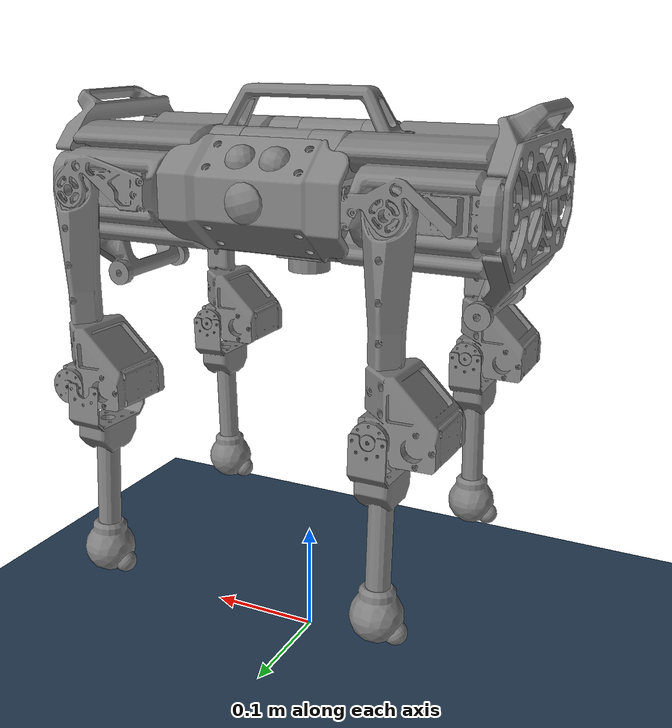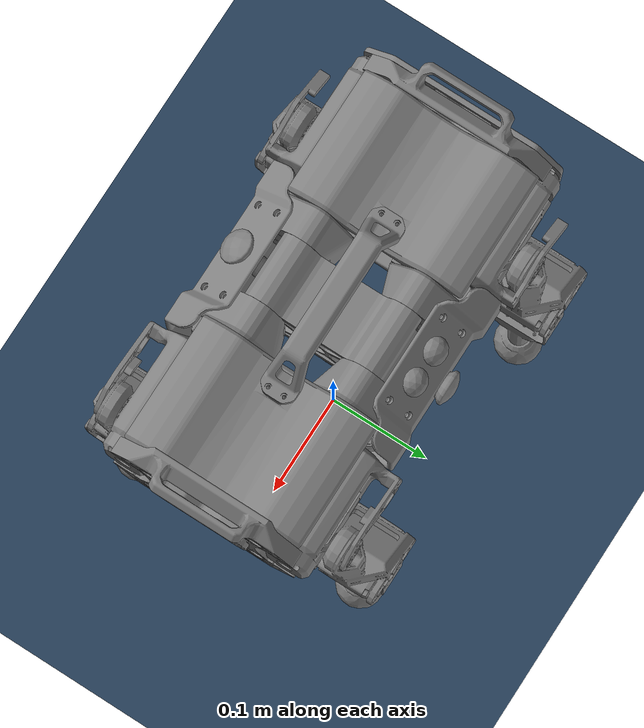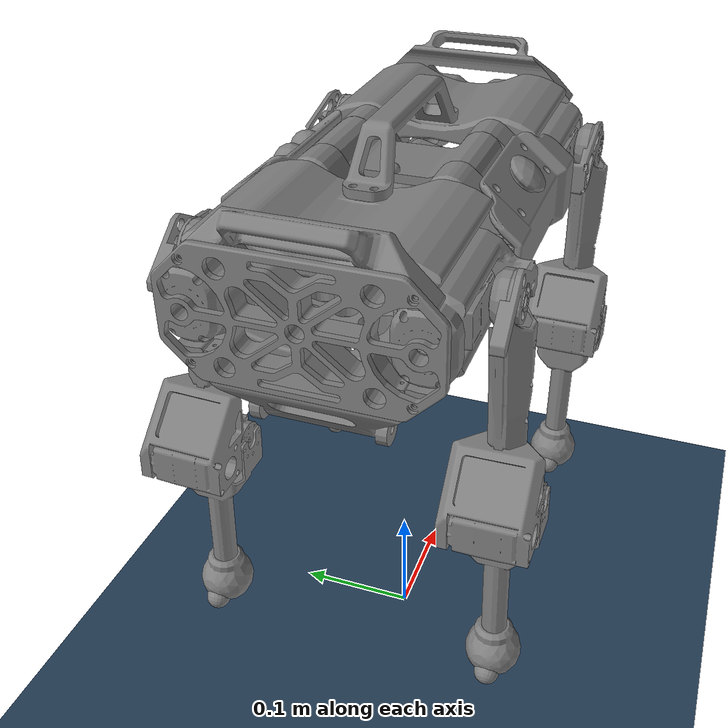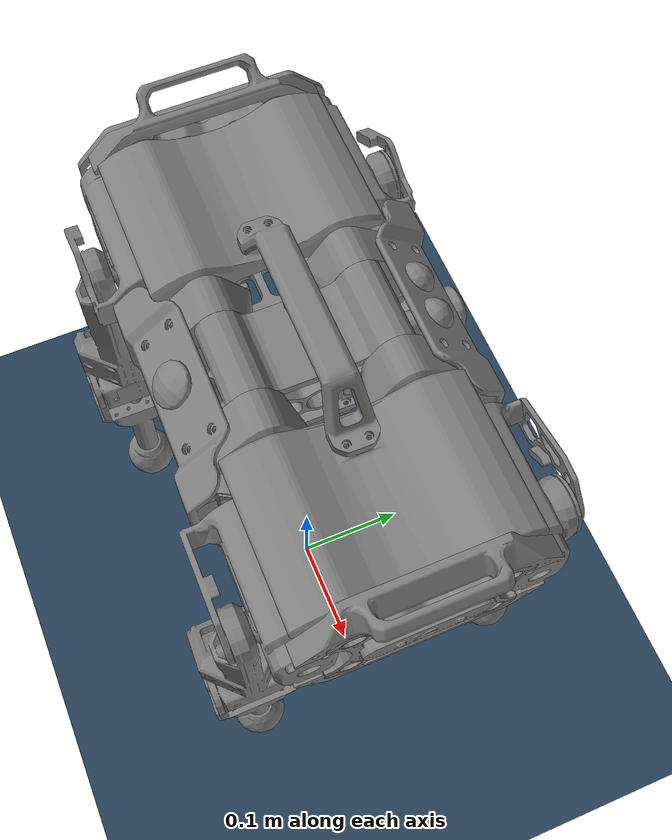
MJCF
<mujoco model="robot scene">
  <include file="my_quadruped.xml"/>

  <!-- Smaller steps and the implicit solver keep stiff contact constraints stable. -->
  <option timestep="0.001" integrator="implicitfast" iterations="100" ls_iterations="50"
    tolerance="1e-8" solver="Newton"/>

  <statistic center="0 0 0.1" extent="0.8"/>

  <visual>
    <headlight diffuse="0.6 0.6 0.6" ambient="0.3 0.3 0.3" specular="0 0 0"/>
    <rgba haze="0.15 0.25 0.35 1"/>
  </visual>

  <asset>
    <texture type="skybox" builtin="gradient" rgb1="0.3 0.5 0.7" rgb2="0 0 0" width="512" height="3072"/>
    <texture type="2d" name="groundplane" builtin="checker" mark="edge" rgb1="0.2 0.3 0.4" rgb2="0.1 0.2 0.3"
      markrgb="0.8 0.8 0.8" width="300" height="300"/>
    <material name="groundplane" texture="groundplane" texuniform="true" texrepeat="5 5" reflectance="0.2"/>
  </asset>

  <keyframe>
    <key name="home"
         qpos="0 0 0.28 1 0 0 0  0.0 0.9 -1.65  0.0 0.9 -1.65  0.0 0.9 -1.6  0.0 0.9 -1.6"
         ctrl="0.0 0.9 -1.65  0.0 0.9 -1.65  0.0 0.9 -1.6  0.0 0.9 -1.6"/>
  </keyframe>

  <worldbody>
    <light pos="0 0 1.5" dir="0 0 -1" directional="true"/>
    <geom name="floor" size="0 0 0.05" type="plane" material="groundplane"
      friction="0.5 0.1 0.02" condim="3" solref="0.002 1" solimp="0.9 0.95 0.001"/>

  </worldbody>
</mujoco>

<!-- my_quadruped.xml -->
<mujoco model="generated_robot">
  <compiler angle="radian" meshdir="meshes/"/>

  <asset>
    <mesh name="part_040_p._-" file="part_040_p._-.stl" scale="0.001 0.001 0.001"/>
    <mesh name="part_045_p." file="part_045_p..stl" scale="0.001 0.001 0.001"/>
    <mesh name="part_042_p._-" file="part_042_p._-.stl" scale="0.001 0.001 0.001"/>
    <mesh name="part_041_p." file="part_041_p..stl" scale="0.001 0.001 0.001"/>
    <mesh name="part_019_p." file="part_019_p..stl" scale="0.001 0.001 0.001"/>
    <mesh name="part_023_p." file="part_023_p..stl" scale="0.001 0.001 0.001"/>
    <mesh name="part_031_p." file="part_031_p..stl" scale="0.001 0.001 0.001"/>
    <mesh name="part_039_p." file="part_039_p..stl" scale="0.001 0.001 0.001"/>
    <mesh name="part_022_p." file="part_022_p..stl" scale="0.001 0.001 0.001"/>
    <mesh name="part_033_p." file="part_033_p..stl" scale="0.001 0.001 0.001"/>
    <mesh name="part_027_p." file="part_027_p..stl" scale="0.001 0.001 0.001"/>
    <mesh name="part_024_p._60-16" file="part_024_p._60-16.stl" scale="0.001 0.001 0.001"/>
    <mesh name="part_002_p." file="part_002_p..stl" scale="0.001 0.001 0.001"/>
    <mesh name="part_028_p." file="part_028_p..stl" scale="0.001 0.001 0.001"/>
    <mesh name="part_025_p._60-16" file="part_025_p._60-16.stl" scale="0.001 0.001 0.001"/>
    <mesh name="part_036_p._ORBBEC_DaBaiDCW" file="part_036_p._ORBBEC_DaBaiDCW.stl" scale="0.001 0.001 0.001"/>
    <mesh name="part_029_p." file="part_029_p..stl" scale="0.001 0.001 0.001"/>
    <mesh name="part_047_part" file="part_047_part.stl" scale="0.001 0.001 0.001"/>
    <mesh name="part_035_p." file="part_035_p..stl" scale="0.001 0.001 0.001"/>
    <mesh name="part_034_p." file="part_034_p..stl" scale="0.001 0.001 0.001"/>
    <mesh name="part_020_p." file="part_020_p..stl" scale="0.001 0.001 0.001"/>
    <mesh name="part_037_p._CNC" file="part_037_p._CNC.stl" scale="0.001 0.001 0.001"/>
    <mesh name="part_021_p." file="part_021_p..stl" scale="0.001 0.001 0.001"/>
    <mesh name="part_032_p." file="part_032_p..stl" scale="0.001 0.001 0.001"/>
    <mesh name="part_030_p." file="part_030_p..stl" scale="0.001 0.001 0.001"/>
    <mesh name="part_043_p." file="part_043_p..stl" scale="0.001 0.001 0.001"/>
    <mesh name="part_044_p._-" file="part_044_p._-.stl" scale="0.001 0.001 0.001"/>
    <mesh name="part_017_p._60-16" file="part_017_p._60-16.stl" scale="0.001 0.001 0.001"/>
    <mesh name="part_046_-" file="part_046_-.stl" scale="0.001 0.001 0.001"/>
    <mesh name="part_018_p._60-16" file="part_018_p._60-16.stl" scale="0.001 0.001 0.001"/>
    <mesh name="part_001_p." file="part_001_p..stl" scale="0.001 0.001 0.001"/>
    <mesh name="part_003_p." file="part_003_p..stl" scale="0.001 0.001 0.001"/>
    <mesh name="part_004_p." file="part_004_p..stl" scale="0.001 0.001 0.001"/>
    <mesh name="part_026_p._-" file="part_026_p._-.stl" scale="0.001 0.001 0.001"/>
    <mesh name="part_005_p." file="part_005_p..stl" scale="0.001 0.001 0.001"/>
    <mesh name="part_009_p." file="part_009_p..stl" scale="0.001 0.001 0.001"/>
    <mesh name="part_013_part" file="part_013_part.stl" scale="0.001 0.001 0.001"/>
    <mesh name="part_006_p." file="part_006_p..stl" scale="0.001 0.001 0.001"/>
    <mesh name="part_010_p." file="part_010_p..stl" scale="0.001 0.001 0.001"/>
    <mesh name="part_015_part" file="part_015_part.stl" scale="0.001 0.001 0.001"/>
    <mesh name="part_007_p." file="part_007_p..stl" scale="0.001 0.001 0.001"/>
    <mesh name="part_011_p." file="part_011_p..stl" scale="0.001 0.001 0.001"/>
    <mesh name="part_014_part" file="part_014_part.stl" scale="0.001 0.001 0.001"/>
    <mesh name="part_008_p." file="part_008_p..stl" scale="0.001 0.001 0.001"/>
    <mesh name="part_012_p." file="part_012_p..stl" scale="0.001 0.001 0.001"/>
    <mesh name="part_016_part" file="part_016_part.stl" scale="0.001 0.001 0.001"/>
  </asset>

  <default>
    <geom contype="1" conaffinity="1"/>
    <joint damping="0.05" frictionloss="0.0001" armature="0.0025"/>
    <default class="visual">
      <geom contype="0" conaffinity="0" group="1" density="0"/>
    </default>
    <default class="collision">
      <geom contype="1" conaffinity="0" group="3" density="0"/>
    </default>
    <default class="servo">
      <geom contype="1" conaffinity="0" condim="1" />
      <joint damping="0.04" frictionloss="0.001" armature="0.0025" />
      <position kp="15" kv="0.5"  forcerange="-3.8 3.8" />
    </default>
  </default>

  <sensor>
      <framequat    name='orientation' objtype='site' noise='0.001' objname='imu'/>
      <gyro         name='imu_ang_vel'    site='imu' noise='0.005'/>
      <velocimeter   name='imu_lin_vel'    site='imu' noise='0.001'/>
      <accelerometer name='imu_accel'     site='imu' noise='0.005'/>
      <subtreeangmom name='root_angmom'    body='trunk'/>
  </sensor>

    <worldbody>
      <body name="trunk" pos="0 0 0.415" quat="1 0 0 0">
        <joint name="float_base" type="free"/>
        <inertial pos="0 0 0" quat="1 0 0 0" mass="3.4" diaginertia="0.01407104 0.04335934 0.04902045"/>
        <site name="imu" pos="-0.02557 0 0.04232" />

        <geom name="trunk_visual_01" pos="-0.0465413 0.0773064 -0.0244771" quat="1 0 0 0" type="mesh" contype="0" conaffinity="0" group="1" density="0" mesh="part_040_p._-"/>
        <geom name="trunk_visual_02" pos="-0.0465413 0.0773064 -0.0244771" quat="1 0 0 0" type="mesh" contype="0" conaffinity="0" group="1" density="0" mesh="part_045_p."/>
        <geom name="trunk_visual_03" pos="-0.0465413 0.0773064 -0.0244771" quat="1 0 0 0" type="mesh" contype="0" conaffinity="0" group="1" density="0" mesh="part_042_p._-"/>
        <geom name="trunk_visual_04" pos="-0.0465413 0.0773064 -0.0244771" quat="1 0 0 0" type="mesh" contype="0" conaffinity="0" group="1" density="0" mesh="part_041_p."/>
        <geom name="trunk_visual_05" pos="-0.0465413 0.0773064 -0.0244771" quat="1 0 0 0" type="mesh" contype="0" conaffinity="0" group="1" density="0" mesh="part_019_p."/>
        <geom name="trunk_visual_06" pos="-0.0465413 0.0773064 -0.0244771" type="mesh" contype="0" conaffinity="0" group="1" density="0" mesh="part_023_p."/>
        <geom name="trunk_visual_07" pos="-0.0465413 0.0773064 -0.0244771" quat="1 0 0 0" type="mesh" contype="0" conaffinity="0" group="1" density="0" mesh="part_031_p."/>
        <geom name="trunk_visual_08" pos="-0.0465413 0.0773064 -0.0244771" quat="1 0 0 0" type="mesh" contype="0" conaffinity="0" group="1" density="0" mesh="part_039_p."/>
        <geom name="trunk_visual_09" pos="-0.0465413 0.0773064 -0.0244771" quat="1 0 0 0" type="mesh" contype="0" conaffinity="0" group="1" density="0" mesh="part_022_p."/>
        <geom name="trunk_visual_10" pos="-0.0465413 0.0773064 -0.0244771" quat="1 0 0 0" type="mesh" contype="0" conaffinity="0" group="1" density="0" mesh="part_033_p."/>
        <geom name="trunk_visual_11" pos="-0.0465413 0.0773064 -0.0244771" quat="1 0 0 0" type="mesh" contype="0" conaffinity="0" group="1" density="0" mesh="part_027_p."/>
        <geom name="trunk_visual_12" pos="-0.0465413 0.0773064 -0.0244771" quat="1 0 0 0" type="mesh" contype="0" conaffinity="0" group="1" density="0" mesh="part_024_p._60-16"/>
        <geom name="trunk_visual_13" pos="-0.0465413 0.0773064 -0.0244771" quat="1 0 0 0" type="mesh" contype="0" conaffinity="0" group="1" density="0" mesh="part_002_p."/>
        <geom name="trunk_visual_14" pos="-0.0465413 0.0773064 -0.0244771" quat="1 0 0 0" type="mesh" contype="0" conaffinity="0" group="1" density="0" mesh="part_028_p."/>
        <geom name="trunk_visual_15" pos="-0.0465413 0.0773064 -0.0244771" quat="1 0 0 0" type="mesh" contype="0" conaffinity="0" group="1" density="0" mesh="part_025_p._60-16"/>
        <geom name="trunk_visual_16" pos="-0.0465413 0.0773064 -0.0244771" quat="1 0 0 0" type="mesh" contype="0" conaffinity="0" group="1" density="0" mesh="part_036_p._ORBBEC_DaBaiDCW"/>
        <geom name="trunk_visual_17" pos="-0.0465413 0.0773064 -0.0244771" quat="1 0 0 0" type="mesh" contype="0" conaffinity="0" group="1" density="0" mesh="part_029_p."/>
        <geom name="trunk_visual_18" pos="-0.0465413 0.0773064 -0.0244771" quat="1 0 0 0" type="mesh" contype="0" conaffinity="0" group="1" density="0" mesh="part_047_part"/>
        <geom name="trunk_visual_19" pos="-0.0465413 0.0773064 -0.0244771" quat="1 0 0 0" type="mesh" contype="0" conaffinity="0" group="1" density="0" mesh="part_035_p."/>
        <geom name="trunk_visual_20" pos="-0.0465413 0.0773064 -0.0244771" quat="1 0 0 0" type="mesh" contype="0" conaffinity="0" group="1" density="0" mesh="part_034_p."/>
        <geom name="trunk_visual_21" pos="-0.0465413 0.0773064 -0.0244771" quat="1 0 0 0" type="mesh" contype="0" conaffinity="0" group="1" density="0" mesh="part_020_p."/>
        <geom name="trunk_visual_22" pos="-0.0465413 0.0773064 -0.0244771" quat="1 0 0 0" type="mesh" contype="0" conaffinity="0" group="1" density="0" mesh="part_037_p._CNC"/>
        <geom name="trunk_visual_23" pos="-0.0465413 0.0773064 -0.0244771" quat="1 0 0 0" type="mesh" contype="0" conaffinity="0" group="1" density="0" mesh="part_021_p."/>
        <geom name="trunk_visual_24" pos="-0.0465413 0.0773064 -0.0244771" quat="1 0 0 0" type="mesh" contype="0" conaffinity="0" group="1" density="0" mesh="part_032_p."/>
        <geom name="trunk_visual_25" pos="-0.0465413 0.0773064 -0.0244771" quat="1 0 0 0" type="mesh" contype="0" conaffinity="0" group="1" density="0" mesh="part_030_p."/>
        <geom name="trunk_visual_26" pos="-0.0465413 0.0773064 -0.0244771" quat="1 0 0 0" type="mesh" contype="0" conaffinity="0" group="1" density="0" mesh="part_043_p."/>
        <geom name="trunk_visual_27" pos="-0.0465413 0.0773064 -0.0244771" quat="1 0 0 0" type="mesh" contype="0" conaffinity="0" group="1" density="0" mesh="part_044_p._-"/>
        <geom name="trunk_visual_28" pos="-0.0465413 0.0773064 -0.0244771" quat="1 0 0 0" type="mesh" contype="0" conaffinity="0" group="1" density="0" mesh="part_017_p._60-16"/>
        <geom name="trunk_visual_29" pos="-0.0465413 0.0773064 -0.0244771" quat="1 0 0 0" type="mesh" contype="0" conaffinity="0" group="1" density="0" mesh="part_046_-"/>
        <geom name="trunk_visual_30" pos="-0.0465413 0.0773064 -0.0244771" quat="1 0 0 0" type="mesh" contype="0" conaffinity="0" group="1" density="0" mesh="part_018_p._60-16"/>
        <geom name="trunk_visual_31" pos="-0.0465413 0.0773064 -0.0244771" quat="1 0 0 0" type="mesh" contype="0" conaffinity="0" group="1" density="0" mesh="part_001_p."/>
        <geom name="trunk_visual_32" pos="-0.0465413 0.0773064 -0.0244771" quat="1 0 0 0" type="mesh" contype="0" conaffinity="0" group="1" density="0" mesh="part_003_p."/>
        <geom name="trunk_visual_33" pos="-0.0465413 0.0773064 -0.0244771" quat="1 0 0 0" type="mesh" contype="0" conaffinity="0" group="1" density="0" mesh="part_004_p."/>
        <geom name="trunk_visual_34" pos="-0.0465413 0.0773064 -0.0244771" quat="1 0 0 0" type="mesh" contype="0" conaffinity="0" group="1" density="0" mesh="part_026_p._-"/>

        <!-- 物理碰撞 Box：用 Box 代替一堆 STL 网格进行碰撞计算，group="3" 且不显示外观 -->
        <geom name="trunk_collision" type="box" size="0.195 0.1 0.05" pos="0 0 0.008" contype="0" conaffinity="0" group="3" density="0"/>

        <body name="FL_hip" pos="0.1972 0.0894256 0.00635923" quat="0.5 -0.5 -0.5 0.5">
          <inertial pos="-0.00909489 -0.000258221 0.0630494" quat="0.999696 0.000164542 0.00140553 0.0246125" mass="0.256472" diaginertia="0.000342688 0.000319455 0.000127745"/>
          <joint name="FL_hip_joint" pos="0 0 0" axis="0 0 1" range="-0.802851 0.802851" damping="0.05" frictionloss="0.0001" armature="0.0025"/>
          <geom name="FL_hip_visual" pos="-0.0121192 0.0308363 0.243741" quat="0.5 0.5 0.5 -0.5" type="mesh" contype="0" conaffinity="0" group="1" density="0" mesh="part_005_p."/>
          <geom class="collision" name="FL_hip_collision" pos="-0.0121192 0.0308363 0.243741" quat="0.5 0.5 0.5 -0.5" type="mesh" contype="0" conaffinity="0" mesh="part_005_p."/>
          <body name="FL_thigh" pos="0.0309881 -0.0011399 0.04" quat="0.280005 -0.641654 0.297119 -0.649305">
            <inertial pos="-0.0811068 -0.0995791 -0.00884872" quat="0.699785 0.504347 -0.492142 0.117177" mass="0.234447" diaginertia="0.000576414 0.000572915 0.000114243"/>
            <joint name="FL_thigh_joint" pos="0 0 0" axis="0 0 1" range="-1.0472 4.18879" damping="0.05" frictionloss="0.0001" armature="0.0025"/>
            <geom name="FL_thigh_visual" pos="-0.0308222 -0.203741 -0.0439398" quat="0.506584 0.493328 0.493328 0.506584" type="mesh" contype="0" conaffinity="0" group="1" density="0" mesh="part_009_p."/>
            <geom class="collision" name="FL_thigh_collision" pos="-0.0308222 -0.203741 -0.0439398" quat="0.506584 0.493328 0.493328 0.506584" type="mesh" mesh="part_009_p."/>
            <body name="FL_calf" pos="-0.104157 -0.112433 0.0136" quat="0.689498 1.86659e-09 -1.77694e-09 0.724287">
              <inertial pos="-0.0751983 0.0856898 -0.0242335" quat="0.669704 0.670435 0.225051 0.226641" mass="0.0873034" diaginertia="0.000294497 0.000287059 2.34947e-05"/>
              <joint name="FL_calf_joint" pos="0 0 0" axis="0 0 1" range="-2.69653 -0.916298" damping="0.05" frictionloss="0.0001" armature="0.0025"/>
              <geom name="FL_calf_visual" pos="0.0733351 -0.091308 -0.0575398" quat="0.506584 0.493328 0.493328 0.506584" type="mesh" contype="0" conaffinity="0" group="1" density="0" mesh="part_013_part"/>
          <geom class="collision" name="FL_calf_collision" pos="0.0733351 -0.091308 -0.0575398" quat="0.506584 0.493328 0.493328 0.506584" type="mesh" mesh="part_013_part"/>
              <site name="FL" pos="-0.12443432 0.12277724 -0.02333542" quat="0.506584 0.493328 0.493328 0.506584" size="0.01"/>
            </body>
          </body>
        </body>

        <body name="FR_hip" pos="0.1972 -0.0895681 0.00635923" quat="0.5 -0.5 -0.5 0.5">
          <inertial pos="0.00908755 -0.000150061 0.0630494" quat="0.999119 0.000152031 -0.00140799 -0.0419352" mass="0.256472" diaginertia="0.000342684 0.000319458 0.000127745"/>
          <joint name="FR_hip_joint" pos="0 0 0" axis="0 0 1" range="-0.802851 0.802851" damping="0.05" frictionloss="0.0001" armature="0.0025"/>
          <geom name="FR_hip_visual" pos="0.166874 0.0308363 0.243741" quat="0.5 0.5 0.5 -0.5" type="mesh" contype="0" conaffinity="0" group="1" density="0" mesh="part_006_p."/>
          <geom class="collision" name="FR_hip_collision" pos="0.166874 0.0308363 0.243741" quat="0.5 0.5 0.5 -0.5" type="mesh" contype="0" conaffinity="0" mesh="part_006_p."/>
          <body name="FR_thigh" pos="-0.0259873 0.000352442 0.04" quat="0.279107 -0.647074 0.285122 -0.649692">
            <inertial pos="-0.0813157 -0.0994087 0.00645131" quat="0.706597 0.480102 -0.500401 0.140786" mass="0.234447" diaginertia="0.000576646 0.000573875 0.000114134"/>
            <joint name="FR_thigh_joint" pos="0 0 0" axis="0 2.0562e-10 1" range="-1.0472 4.18879" damping="0.05" frictionloss="0.0001" armature="0.0025"/>
            <geom name="FR_thigh_visual" pos="-0.032272 -0.203741 0.192571" quat="0.502314 0.497675 0.497675 0.502314" type="mesh" contype="0" conaffinity="0" group="1" density="0" mesh="part_010_p."/>
            <geom class="collision" name="FR_thigh_collision" pos="-0.032272 -0.203741 0.192571" quat="0.502314 0.497675 0.497675 0.502314" type="mesh" mesh="part_010_p."/>
            <body name="FR_calf" pos="-0.115672 -0.110544 -0.0248642" quat="0.637151 8.39571e-11 -6.94053e-11 0.770739">
              <inertial pos="-0.0592532 0.0873933 0.0304665" quat="0.675618 0.676306 0.20674 0.208349" mass="0.0873034" diaginertia="0.000294497 0.000287059 2.34947e-05"/>
              <joint name="FR_calf_joint" pos="0 0 0" axis="0 0 1" range="-2.69653 -0.916298" damping="0.05" frictionloss="0.0001" armature="0.0025"/>
              <geom name="FR_calf_visual" pos="0.0834 -0.0931972 0.217435" quat="0.502314 0.497675 0.497675 0.502314" type="mesh" contype="0" conaffinity="0" group="1" density="0" mesh="part_015_part"/>
              <geom class="collision" name="FR_calf_collision" pos="0.0834 -0.0931972 0.217435" quat="0.502314 0.497675 0.497675 0.502314" type="mesh" mesh="part_015_part"/>
              <site name="FR" pos="-0.10652465 0.12787349 0.03105303" quat="0.502314 0.497675 0.497675 0.502314" size="0.01"/>
            </body>
          </body>
        </body>

        <body name="RL_hip" pos="-0.1972 0.0774287 0.00635923" quat="0.5 0.5 0.5 0.5">
          <inertial pos="0.0028963 0.000212166 0.0640658" quat="0.999813 -0.00183103 0.0149551 -0.0121134" mass="0.25657" diaginertia="0.000340244 0.000317073 0.000126958"/>
          <joint name="RL_hip_joint" pos="0 0 0" axis="0 0 -1" range="-0.802851 0.802851" damping="0.05" frictionloss="0.0001" armature="0.0025"/>
          <geom name="RL_hip_visual" pos="-0.000122364 -0.0308363 0.150659" quat="0.5 -0.5 -0.5 -0.5" type="mesh" contype="0" conaffinity="0" group="1" density="0" mesh="part_007_p."/>
          <geom class="collision" name="RL_hip_collision" pos="-0.000122364 -0.0308363 0.150659" quat="0.5 -0.5 -0.5 -0.5" type="mesh" contype="0" conaffinity="0" mesh="part_007_p."/>
          <body name="RL_thigh" pos="0.0379698 0.00110179 0.079" quat="0.127215 -0.691587 -0.147336 0.695569">
            <inertial pos="-0.0324918 0.124252 0.00383451" quat="0.263034 0.373883 -0.597312 0.658971" mass="0.234447" diaginertia="0.000576414 0.000572915 0.000114243"/>
            <joint name="RL_thigh_joint" pos="0 0 0" axis="0 0 -1" range="-1.0472 4.18879" damping="0.05" frictionloss="0.0001" armature="0.0025"/>
            <geom name="RL_thigh_visual" pos="-0.0308198 -0.0716587 0.0390025" quat="0.492695 -0.5072 0.5072 -0.492695" type="mesh" contype="0" conaffinity="0" group="1" density="0" mesh="part_011_p."/>
            <geom class="collision" name="RL_thigh_collision" pos="-0.0308198 -0.0716587 0.0390025" quat="0.492695 -0.5072 0.5072 -0.492695" type="mesh" mesh="part_011_p."/>
            <body name="RL_calf" pos="-0.0590821 0.148692 -0.0251642" quat="-1.45152e-08 -0.625519 0.780209 1.81048e-08">
              <inertial pos="-0.0861011 0.0611158 -0.0307335" quat="0.627776 0.628739 0.323756 0.325218" mass="0.0873034" diaginertia="0.000294497 0.000287059 2.34947e-05"/>
              <joint name="RL_calf_joint" pos="0 0 0" axis="0 0 1" range="-2.69653 -0.916298" damping="0.05" frictionloss="0.0001" armature="0.0025"/>
              <geom name="RL_calf_visual" pos="0.0282623 0.220351 -0.0641667" quat="0.5072 0.492695 0.492695 0.507199" type="mesh" contype="0" conaffinity="0" group="1" density="0" mesh="part_014_part"/>
              <geom class="collision" name="RL_calf_collision" pos="0.0282623 0.220351 -0.0641667" quat="0.5072 0.492695 0.492695 0.507199" type="mesh" mesh="part_014_part"/>
              <site name="RL" pos="-0.14455352 0.08248347 -0.03014710" quat="0.5072 0.492695 0.492695 0.507199" size="0.01"/>
            </body>
          </body>
        </body>

        <body name="RR_hip" pos="-0.1947 -0.0775713 0.00635923" quat="0.5 0.5 0.5 0.5">
          <inertial pos="-0.0028984 0.000182121 0.0615658" quat="0.999729 -0.00174654 -0.0149647 0.0177275" mass="0.25657" diaginertia="0.000340245 0.000317072 0.000126958"/>
          <joint name="RR_hip_joint" pos="0 0 0" axis="0 0 -1" range="-0.802851 0.802851" damping="0.05" frictionloss="0.0001" armature="0.0025"/>
          <geom name="RR_hip_visual" pos="0.154878 -0.0308363 0.148159" quat="0.5 -0.5 -0.5 -0.5" type="mesh" contype="0" conaffinity="0" group="1" density="0" mesh="part_008_p."/>
          <geom class="collision" name="RR_hip_collision" pos="0.154878 -0.0308363 0.148159" quat="0.5 -0.5 -0.5 -0.5" type="mesh" contype="0" conaffinity="0" mesh="part_008_p."/>
          <body name="RR_thigh" pos="-0.0379795 0.000691422 0.0765" quat="0.646715 0.297661 0.641403 0.285937">
            <inertial pos="-0.0859493 -0.0954308 0.00645131" quat="0.709745 0.46807 -0.511674 0.123946" mass="0.234447" diaginertia="0.000576646 0.000573875 0.000114134"/>
            <joint name="RR_thigh_joint" pos="0 0 0" axis="0 0 1" range="-1.0472 4.18879" damping="0.05" frictionloss="0.0001" armature="0.0025"/>
            <geom name="RR_thigh_visual" pos="-0.0280121 0.0716587 0.193399" quat="0.495429 0.50453 0.50453 0.495429" type="mesh" contype="0" conaffinity="0" group="1" density="0" mesh="part_012_p."/>
            <geom class="collision" name="RR_thigh_collision" pos="-0.0280121 0.0716587 0.193399" quat="0.495429 0.50453 0.50453 0.495429" type="mesh" mesh="part_012_p."/>
            <body name="RR_calf" pos="-0.120796 -0.10492 -0.0248642" quat="0.674876 5.35895e-11 -4.90103e-11 0.737931">
              <inertial pos="-0.0633339 0.0844828 0.0304665" quat="0.670483 0.671208 0.222734 0.224327" mass="0.0873034" diaginertia="0.000294497 0.000287059 2.34947e-05"/>
              <joint name="RR_calf_joint" pos="0 0 0" axis="0 0 1" range="-2.69653 -0.916298" damping="0.05" frictionloss="0.0001" armature="0.0025"/>
              <geom name="RR_calf_visual" pos="0.0927841 0.176579 0.218263" quat="0.495429 0.50453 0.50453 0.495429" type="mesh" contype="0" conaffinity="0" group="1" density="0" mesh="part_016_part"/>
              <geom class="collision" name="RR_calf_collision" pos="0.0927841 0.176579 0.218263" quat="0.495429 0.50453 0.50453 0.495429" type="mesh" mesh="part_016_part"/>
              <site name="RR" pos="-0.11247292 0.12267389 0.03105238" quat="0.495429 0.50453 0.50453 0.495429" size="0.01"/>
            </body>
          </body>
        </body>
      </body>
    </worldbody>

    <actuator>
        <position class="servo" name="FL_hip_joint" joint="FL_hip_joint" ctrlrange="-0.802851 0.802851" />
        <position class="servo" name="FL_thigh_joint" joint="FL_thigh_joint" ctrlrange="-1.0472 4.18879" />
        <position class="servo" name="FL_calf_joint" joint="FL_calf_joint" ctrlrange="-2.69653 -0.916298" />
        <position class="servo" name="FR_hip_joint" joint="FR_hip_joint" ctrlrange="-0.802851 0.802851" />
        <position class="servo" name="FR_thigh_joint" joint="FR_thigh_joint" ctrlrange="-1.0472 4.18879" />
        <position class="servo" name="FR_calf_joint" joint="FR_calf_joint" ctrlrange="-2.69653 -0.916298" />
        <position class="servo" name="RL_hip_joint" joint="RL_hip_joint" ctrlrange="-0.802851 0.802851" />
        <position class="servo" name="RL_thigh_joint" joint="RL_thigh_joint" ctrlrange="-1.0472 4.18879" />
        <position class="servo" name="RL_calf_joint" joint="RL_calf_joint" ctrlrange="-2.69653 -0.916298" />
        <position class="servo" name="RR_hip_joint" joint="RR_hip_joint" ctrlrange="-0.802851 0.802851" />
        <position class="servo" name="RR_thigh_joint" joint="RR_thigh_joint" ctrlrange="-1.0472 4.18879" />
        <position class="servo" name="RR_calf_joint" joint="RR_calf_joint" ctrlrange="-2.69653 -0.916298" />
    </actuator>

</mujoco>
